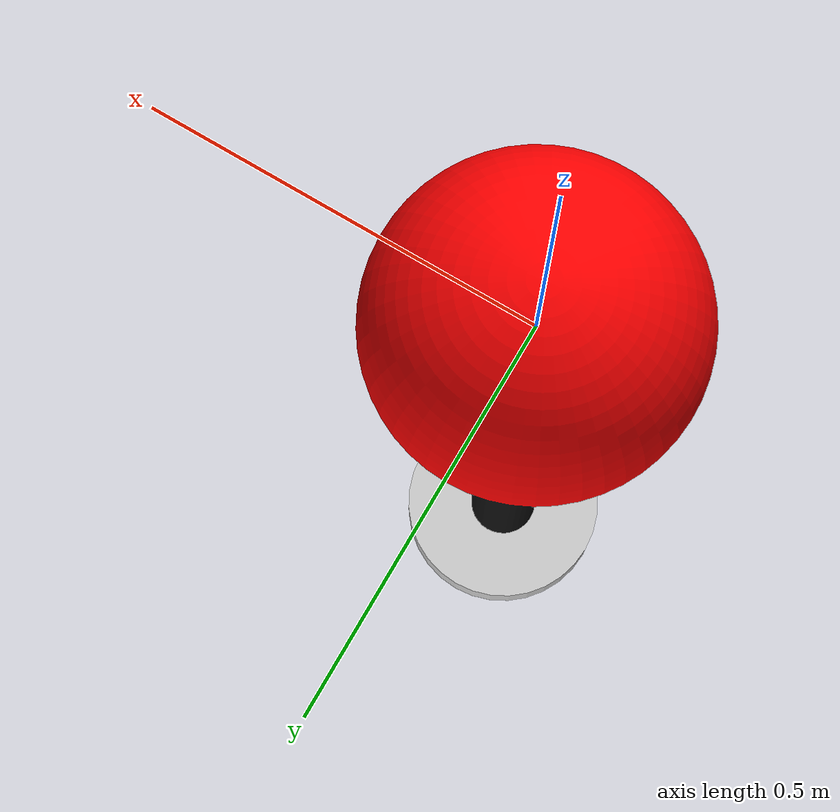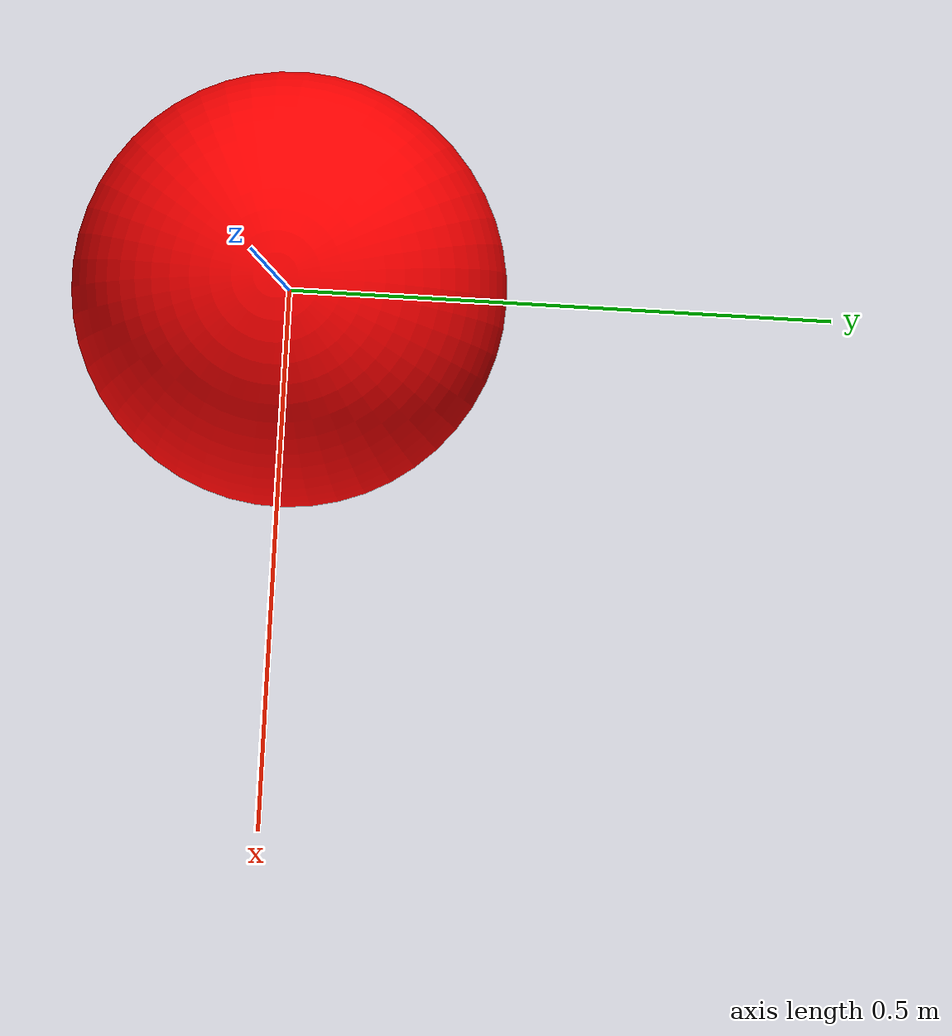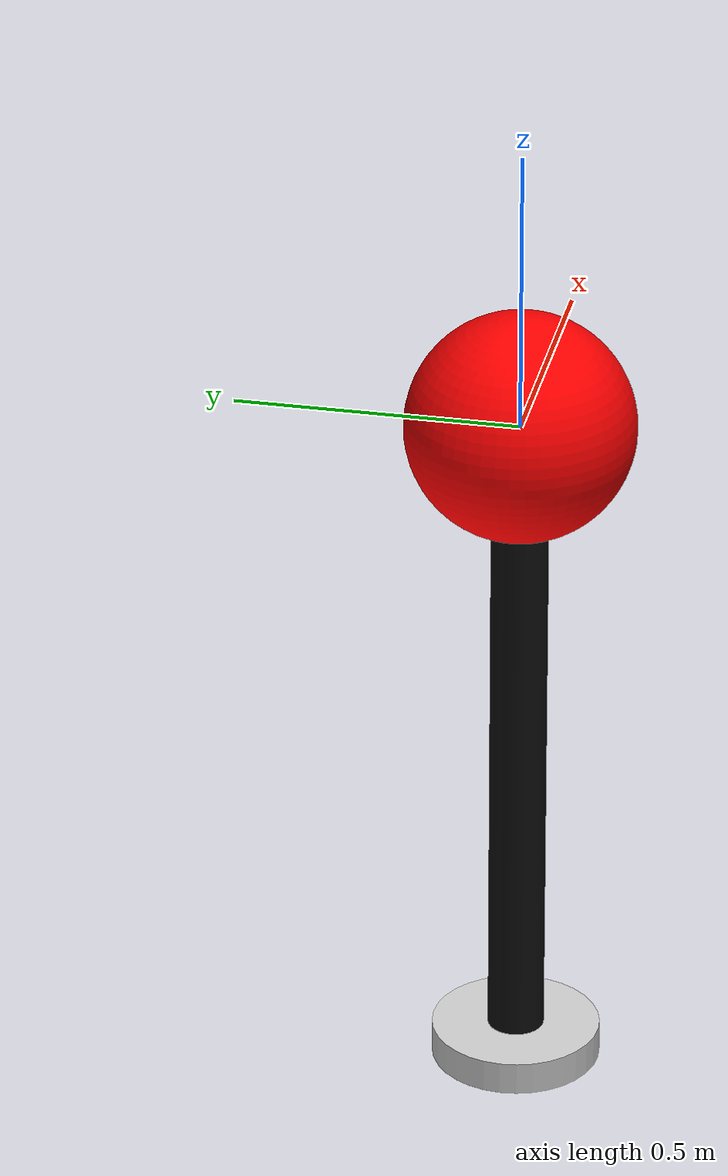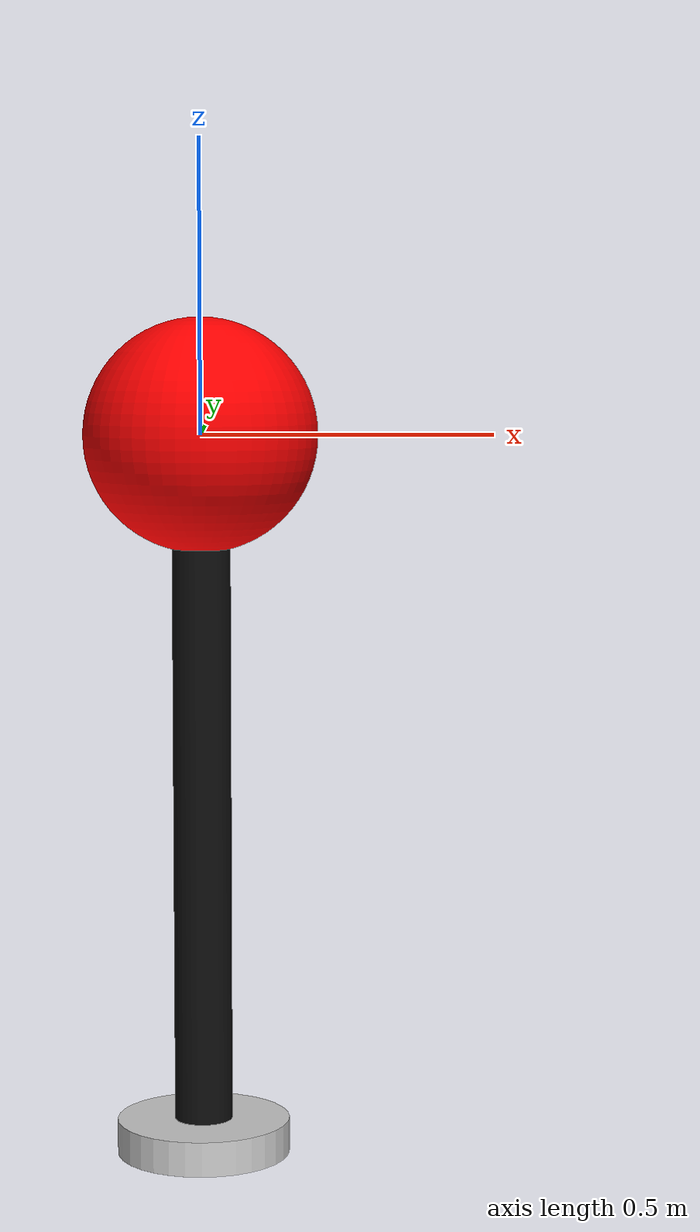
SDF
<?xml version="1.0" ?>
<sdf version="1.5">
<model name="ball">
  <static>false</static>
  <link name="ball_link">

  <inertial>
    <mass>1</mass>
    <pose>0 0 0 0 0 0</pose>
  </inertial>

  <visual name="ball">
    <pose>0 0 0 0 0 0</pose>
    <geometry>
      <mesh><uri>model://ball/meshes/ball.dae</uri><scale>1 1 1</scale></mesh>
    </geometry>
  </visual>

  <collision name="ball">
    <pose>0 0 0 0 0 0</pose>
    <geometry>
      <mesh><uri>model://ball/meshes/ball.dae</uri><scale>1 1 1</scale></mesh>
    </geometry>
  </collision>

  </link>
</model>
</sdf>
